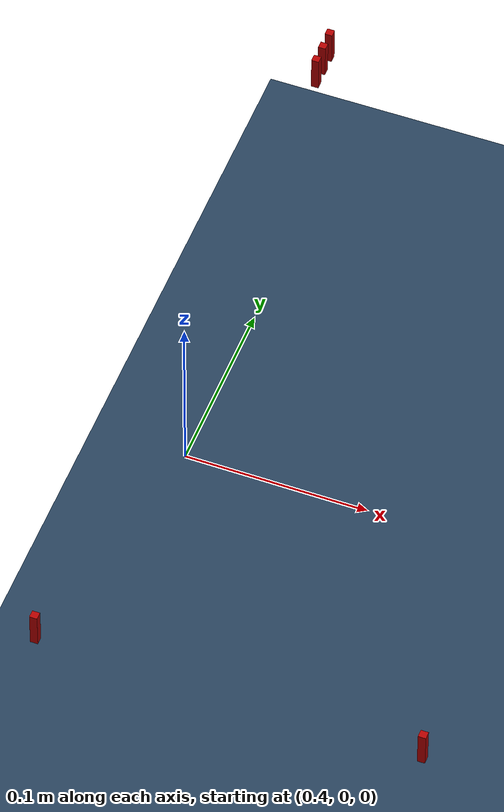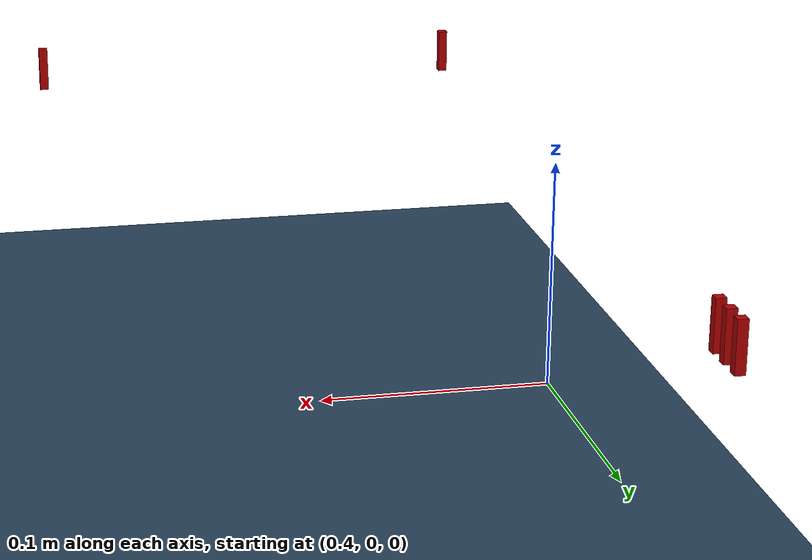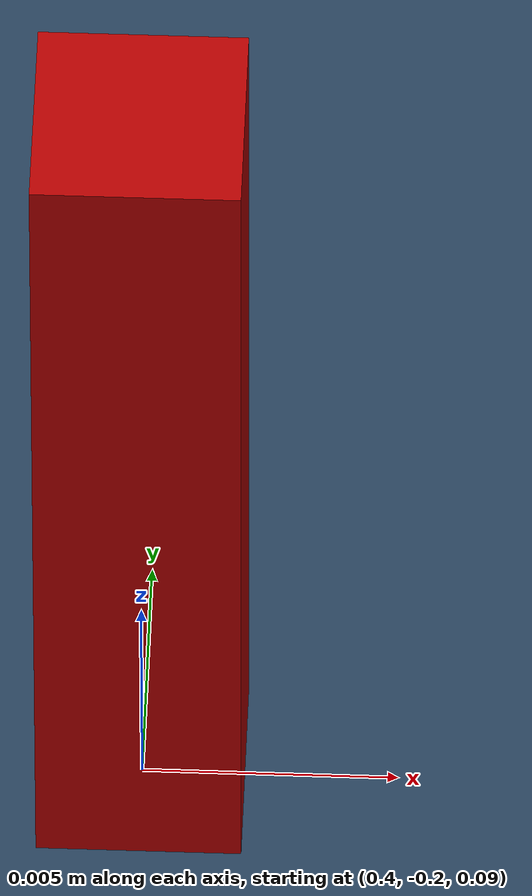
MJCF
<?xml version='1.0' encoding='utf-8'?>
<mujoco model="slope scene">
  <option cone="elliptic" impratio="100" integrator="implicitfast"/>

  <compiler angle="radian" meshdir="../" />
  <statistic center="0.3 0 0.4" extent="1" />

  <visual>
    <headlight diffuse="0.6 0.6 0.6" ambient="0.3 0.3 0.3" specular="0 0 0" />
    <rgba haze="0.15 0.25 0.35 1" />
    <global azimuth="120" elevation="-20" />
  </visual>

  <asset>
    <texture type="skybox" builtin="gradient" rgb1="0.3 0.5 0.7" rgb2="0 0 0" width="512" height="3072" />
    <texture type="2d" name="groundplane" builtin="checker" mark="edge" rgb1="0.2 0.3 0.4" rgb2="0.1 0.2 0.3" markrgb="0.8 0.8 0.8" width="300" height="300" />
    <material name="groundplane" texture="groundplane" texuniform="true" texrepeat="5 5" reflectance="0.2" />
  </asset>

  <worldbody>
    <light pos="0 0 1.5" dir="0 0 -1" directional="true" />
    <geom name="floor" size="0 0 0.05" type="plane" material="groundplane" />
  </worldbody>

  <worldbody>

    <body name="box1" pos="0.4 0.2 0.1" euler="0 0 0">
      <freejoint/>
      <geom type="box" name="box1" size="0.002 0.002 0.01" condim="3"
        rgba="0.7 0 0 1" contype="1" conaffinity="1" solref="0.01 1" density="500" friction="0.01 0.003 .0003"/>
    </body>
    <body name="box2" pos="0.4 0.21 0.1" euler="0 0 0">
      <freejoint/>
      <geom type="box" name="box2" size="0.002 0.002 0.01" condim="3"
        rgba="0.7 0 0 1" contype="1" conaffinity="1" solref="0.01 1" density="500" friction="0.01 0.003 .0003"/>
    </body>
    <body name="box3" pos="0.4 0.19 0.1" euler="0 0 0">
      <freejoint/>
      <geom type="box" name="box3" size="0.002 0.002 0.01" condim="3"
        rgba="0.7 0 0 1" contype="1" conaffinity="1" solref="0.01 1" density="500" friction="0.01 0.003 .0003"/>
    </body>

    <body name="box4" pos="0.4 -0.2 0.1" euler="0 0 0">
      <freejoint/>
      <geom type="box" name="box4" size="0.002 0.002 0.01" condim="3"
        rgba="0.7 0 0 1" contype="1" conaffinity="1" solref="0.01 1" density="500" friction="0.01 0.003 .0003"/>
    </body>
    <body name="box5" pos="0.6 -0.2 0.1" euler="0 0 0">
      <freejoint/>
      <geom type="box" name="box5" size="0.002 0.002 0.01" condim="3"
        rgba="0.7 0 0 1" contype="1" conaffinity="1" solref="0.01 1" density="500" friction="0.01 0.003 .0003"/>
    </body>
  </worldbody>
</mujoco>
